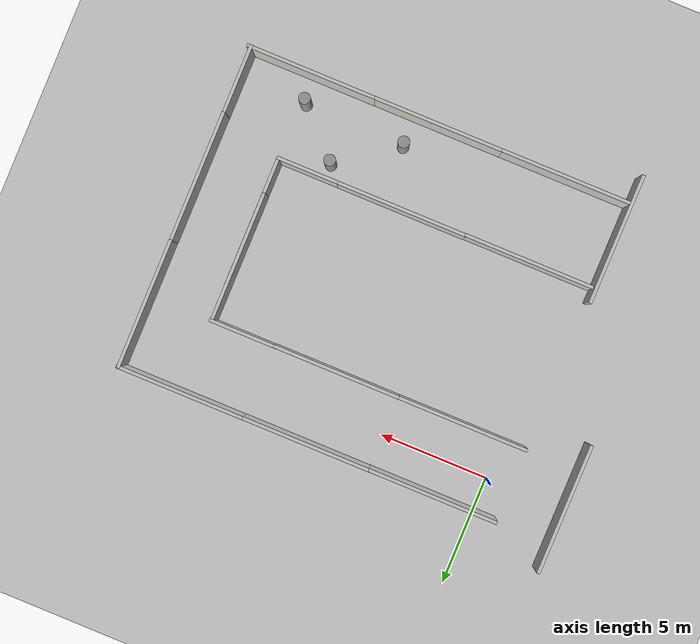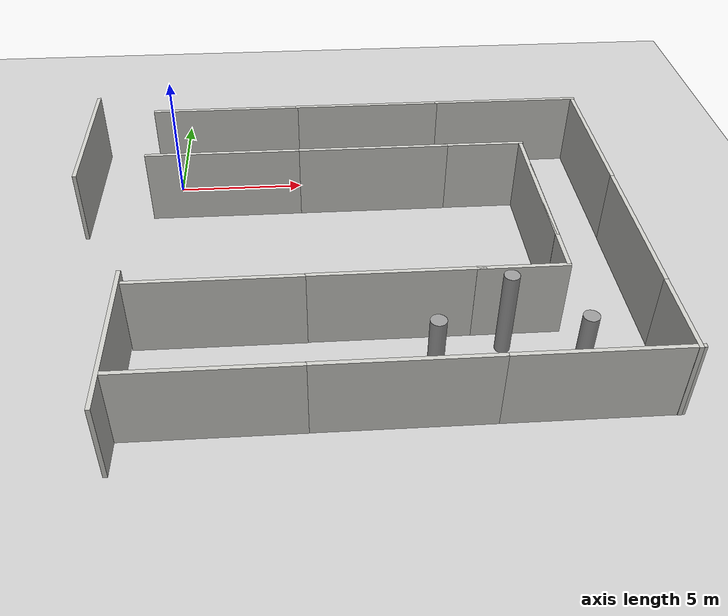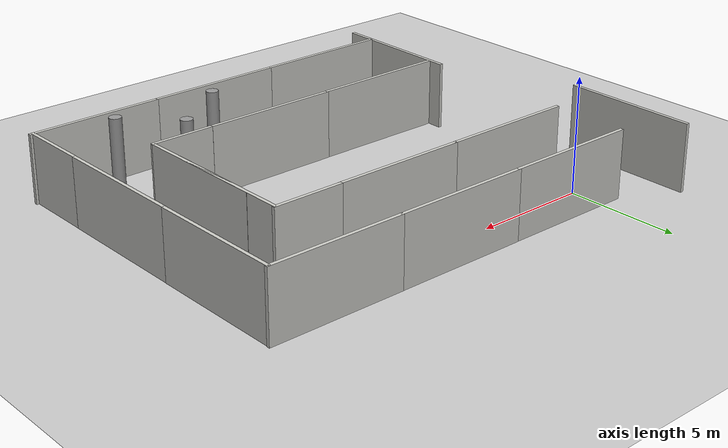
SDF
<sdf version="1.7">
 <world name="default">
  <light name="sun" type="directional">
   <pose>0 0 10 0 -0 0</pose>
   <diffuse>0.8 0.8 0.8 1</diffuse>
   <specular>0.2 0.2 0.2 1</specular>
   <attenuation>
    <range>1000</range>
    <constant>0.9</constant>
    <linear>0.01</linear>
    <quadratic>0.001</quadratic>
   </attenuation>
   <direction>-0.5 0.1 -0.9</direction>
   <spot><inner_angle>0</inner_angle><outer_angle>0</outer_angle><falloff>0</falloff></spot>
  </light>
  <model name="ground_plane">
   <static>1</static>
   <link name="link">
    <collision name="collision">
     <geometry><plane><normal>0 0 1</normal><size>100 100</size></plane></geometry>
     <surface>
      <contact><collide_bitmask>65535</collide_bitmask></contact>
      <friction><ode><mu>100</mu><mu2>50</mu2></ode></friction>
     </surface>
    </collision>
    <visual name="visual">
     <cast_shadows>0</cast_shadows>
     <geometry><plane><normal>0 0 1</normal><size>100 100</size></plane></geometry>
     <material>
      <script><uri>file://media/materials/scripts/gazebo.material</uri><name>Gazebo/Grey</name></script>
     </material>
    </visual>
   </link>
  </model>
  <gravity>0 0 -9.8</gravity>
  <magnetic_field>6e-06 2.3e-05 -4.2e-05</magnetic_field>
  <atmosphere type="adiabatic"/>
  <physics name="default_physics" default="0" type="ode">
   <max_step_size>0.001</max_step_size>
   <real_time_factor>1</real_time_factor>
   <real_time_update_rate>1000</real_time_update_rate>
  </physics>
  <scene><ambient>0.4 0.4 0.4 1</ambient><background>0.7 0.7 0.7 1</background><shadows>1</shadows></scene>
  <spherical_coordinates>
   <surface_model>EARTH_WGS84</surface_model>
   <latitude_deg>0</latitude_deg>
   <longitude_deg>0</longitude_deg>
   <elevation>0</elevation>
   <heading_deg>0</heading_deg>
  </spherical_coordinates>
  <model name="6m_wall_new">
   <link name="Wall_0">
    <collision name="6m_wall_newc">
     <geometry><box><size>6 0.15 3</size></box></geometry>
     <pose>0 0 1.5 0 -0 0</pose>
    </collision>
    <visual name="6m_wall_newv">
     <pose>0 0 1.5 0 -0 0</pose>
     <geometry><box><size>6 0.15 3</size></box></geometry>
     <material>
      <script><uri>file://media/materials/scripts/gazebo.material</uri><name>Gazebo/CeilingTiled</name></script>
      <ambient>1 1 1 1</ambient>
     </material>
     <meta><layer>0</layer></meta>
    </visual>
   </link>
   <static>1</static>
   <pose>1.99756 1.47249 0 0 -0 0</pose>
  </model>
  <model name="6m_wall_new_0">
   <link name="Wall_0">
    <collision name="6m_wall_newc">
     <geometry><box><size>6 0.15 3</size></box></geometry>
     <pose>0 0 1.5 0 -0 0</pose>
    </collision>
    <visual name="6m_wall_newv">
     <pose>0 0 1.5 0 -0 0</pose>
     <geometry><box><size>6 0.15 3</size></box></geometry>
     <material>
      <script><uri>file://media/materials/scripts/gazebo.material</uri><name>Gazebo/CeilingTiled</name></script>
      <ambient>1 1 1 1</ambient>
     </material>
     <meta><layer>0</layer></meta>
    </visual>
   </link>
   <static>1</static>
   <pose>16.7013 -1.45987 0 0 0 -1.5708</pose>
  </model>
  <model name="6m_wall_new_0_clone">
   <link name="Wall_0">
    <collision name="6m_wall_newc">
     <geometry><box><size>6 0.15 3</size></box></geometry>
     <pose>0 0 1.5 0 -0 0</pose>
    </collision>
    <visual name="6m_wall_newv">
     <pose>0 0 1.5 0 -0 0</pose>
     <geometry><box><size>6 0.15 3</size></box></geometry>
     <material>
      <script><uri>file://media/materials/scripts/gazebo.material</uri><name>Gazebo/CeilingTiled</name></script>
      <ambient>1 1 1 1</ambient>
     </material>
     <meta><layer>0</layer></meta>
    </visual>
   </link>
   <static>1</static>
   <pose>16.6905 -7.4318 0 0 0 -1.5708</pose>
  </model>
  <model name="3m_wall_new">
   <pose>16.6828 -12 0 0 0 -1.5708</pose>
   <link name="Wall_45">
    <collision name="3m_wall_newc">
     <geometry><box><size>3.15 0.15 3</size></box></geometry>
     <pose>0 0 1.5 0 -0 0</pose>
    </collision>
    <visual name="3m_wall_newv">
     <pose>0 0 1.5 0 -0 0</pose>
     <geometry><box><size>3.15 0.15 3</size></box></geometry>
     <material>
      <script><uri>file://media/materials/scripts/gazebo.material</uri><name>Gazebo/CeilingTiled</name></script>
      <ambient>1 1 1 1</ambient>
     </material>
     <meta><layer>0</layer></meta>
    </visual>
   </link>
   <static>1</static>
  </model>
  <model name="6m_wall_new_2">
   <link name="Wall_0">
    <collision name="6m_wall_newc">
     <geometry><box><size>6 0.15 3</size></box></geometry>
     <pose>0 0 1.5 0 -0 0</pose>
    </collision>
    <visual name="6m_wall_newv">
     <pose>0 0 1.5 0 -0 0</pose>
     <geometry><box><size>6 0.15 3</size></box></geometry>
     <material>
      <script><uri>file://media/materials/scripts/gazebo.material</uri><name>Gazebo/CeilingTiled</name></script>
      <ambient>1 1 1 1</ambient>
     </material>
     <meta><layer>0</layer></meta>
    </visual>
   </link>
   <static>1</static>
   <pose>1.97517 -1.91466 0 0 -0 0</pose>
  </model>
  <model name="6m_wall_new_2_clone">
   <link name="Wall_0">
    <collision name="6m_wall_newc">
     <geometry><box><size>6 0.15 3</size></box></geometry>
     <pose>0 0 1.5 0 -0 0</pose>
    </collision>
    <visual name="6m_wall_newv">
     <pose>0 0 1.5 0 -0 0</pose>
     <geometry><box><size>6 0.15 3</size></box></geometry>
     <material>
      <script><uri>file://media/materials/scripts/gazebo.material</uri><name>Gazebo/CeilingTiled</name></script>
      <ambient>1 1 1 1</ambient>
     </material>
     <meta><layer>0</layer></meta>
    </visual>
   </link>
   <static>1</static>
   <pose>2.02836 -9.50475 0 0 -0 0</pose>
  </model>
  <model name="6m_wall_new_clone">
   <link name="Wall_0">
    <collision name="6m_wall_newc">
     <geometry><box><size>6 0.15 3</size></box></geometry>
     <pose>0 0 1.5 0 -0 0</pose>
    </collision>
    <visual name="6m_wall_newv">
     <pose>0 0 1.5 0 -0 0</pose>
     <geometry><box><size>6 0.15 3</size></box></geometry>
     <material>
      <script><uri>file://media/materials/scripts/gazebo.material</uri><name>Gazebo/CeilingTiled</name></script>
      <ambient>1 1 1 1</ambient>
     </material>
     <meta><layer>0</layer></meta>
    </visual>
   </link>
   <static>1</static>
   <pose>7.89718 1.48051 0 0 -0 0</pose>
  </model>
  <model name="6m_wall_new_clone_0">
   <link name="Wall_0">
    <collision name="6m_wall_newc">
     <geometry><box><size>6 0.15 3</size></box></geometry>
     <pose>0 0 1.5 0 -0 0</pose>
    </collision>
    <visual name="6m_wall_newv">
     <pose>0 0 1.5 0 -0 0</pose>
     <geometry><box><size>6 0.15 3</size></box></geometry>
     <material>
      <script><uri>file://media/materials/scripts/gazebo.material</uri><name>Gazebo/CeilingTiled</name></script>
      <ambient>1 1 1 1</ambient>
     </material>
     <meta><layer>0</layer></meta>
    </visual>
   </link>
   <static>1</static>
   <pose>13.8028 1.48789 0 0 -0 0</pose>
  </model>
  <model name="6m_wall_new_1">
   <link name="Wall_0">
    <collision name="6m_wall_newc">
     <geometry><box><size>6 0.15 3</size></box></geometry>
     <pose>0 0 1.5 0 -0 0</pose>
    </collision>
    <visual name="6m_wall_newv">
     <pose>0 0 1.5 0 -0 0</pose>
     <geometry><box><size>6 0.15 3</size></box></geometry>
     <material>
      <script><uri>file://media/materials/scripts/gazebo.material</uri><name>Gazebo/CeilingTiled</name></script>
      <ambient>1 1 1 1</ambient>
     </material>
     <meta><layer>0</layer></meta>
    </visual>
   </link>
   <static>1</static>
   <pose>1.94933 -13.4886 0 0 -0 0</pose>
  </model>
  <model name="6m_wall_new_4">
   <link name="Wall_0">
    <collision name="6m_wall_newc">
     <geometry><box><size>6 0.15 3</size></box></geometry>
     <pose>0 0 1.5 0 -0 0</pose>
    </collision>
    <visual name="6m_wall_newv">
     <pose>0 0 1.5 0 -0 0</pose>
     <geometry><box><size>6 0.15 3</size></box></geometry>
     <material>
      <script><uri>file://media/materials/scripts/gazebo.material</uri><name>Gazebo/CeilingTiled</name></script>
      <ambient>1 1 1 1</ambient>
     </material>
     <meta><layer>0</layer></meta>
    </visual>
   </link>
   <static>1</static>
   <pose>7.9112 -13.4817 0 0 -0 0</pose>
  </model>
  <model name="6m_wall_new_5">
   <link name="Wall_0">
    <collision name="6m_wall_newc">
     <geometry><box><size>6 0.15 3</size></box></geometry>
     <pose>0 0 1.5 0 -0 0</pose>
    </collision>
    <visual name="6m_wall_newv">
     <pose>0 0 1.5 0 -0 0</pose>
     <geometry><box><size>6 0.15 3</size></box></geometry>
     <material>
      <script><uri>file://media/materials/scripts/gazebo.material</uri><name>Gazebo/CeilingTiled</name></script>
      <ambient>1 1 1 1</ambient>
     </material>
     <meta><layer>0</layer></meta>
    </visual>
   </link>
   <static>1</static>
   <pose>13.8637 -13.4791 0 0 -0 0</pose>
  </model>
  <model name="6m_wall_new_3">
   <link name="Wall_0">
    <collision name="6m_wall_newc">
     <geometry><box><size>6 0.15 3</size></box></geometry>
     <pose>0 0 1.5 0 -0 0</pose>
    </collision>
    <visual name="6m_wall_newv">
     <pose>0 0 1.5 0 -0 0</pose>
     <geometry><box><size>6 0.15 3</size></box></geometry>
     <material>
      <script><uri>file://media/materials/scripts/gazebo.material</uri><name>Gazebo/CeilingTiled</name></script>
      <ambient>1 1 1 1</ambient>
     </material>
     <meta><layer>0</layer></meta>
    </visual>
   </link>
   <static>1</static>
   <pose>7.84 -1.91008 0 0 -0 0</pose>
  </model>
  <model name="3m_wall_new_0">
   <pose>12.2717 -1.89822 0 0 -0 0</pose>
   <link name="Wall_45">
    <collision name="3m_wall_newc">
     <geometry><box><size>3.15 0.15 3</size></box></geometry>
     <pose>0 0 1.5 0 -0 0</pose>
    </collision>
    <visual name="3m_wall_newv">
     <pose>0 0 1.5 0 -0 0</pose>
     <geometry><box><size>3.15 0.15 3</size></box></geometry>
     <material>
      <script><uri>file://media/materials/scripts/gazebo.material</uri><name>Gazebo/CeilingTiled</name></script>
      <ambient>1 1 1 1</ambient>
     </material>
     <meta><layer>0</layer></meta>
    </visual>
   </link>
   <static>1</static>
  </model>
  <model name="6m_wall_new_6">
   <link name="Wall_0">
    <collision name="6m_wall_newc">
     <geometry><box><size>6 0.15 3</size></box></geometry>
     <pose>0 0 1.5 0 -0 0</pose>
    </collision>
    <visual name="6m_wall_newv">
     <pose>0 0 1.5 0 -0 0</pose>
     <geometry><box><size>6 0.15 3</size></box></geometry>
     <material>
      <script><uri>file://media/materials/scripts/gazebo.material</uri><name>Gazebo/CeilingTiled</name></script>
      <ambient>1 1 1 1</ambient>
     </material>
     <meta><layer>0</layer></meta>
    </visual>
   </link>
   <static>1</static>
   <pose>7.98325 -9.48702 0 0 -0 0</pose>
  </model>
  <model name="3m_wall_new_1">
   <pose>12.2422 -9.4891 0 0 -0 0</pose>
   <link name="Wall_45">
    <collision name="3m_wall_newc">
     <geometry><box><size>3.15 0.15 3</size></box></geometry>
     <pose>0 0 1.5 0 -0 0</pose>
    </collision>
    <visual name="3m_wall_newv">
     <pose>0 0 1.5 0 -0 0</pose>
     <geometry><box><size>3.15 0.15 3</size></box></geometry>
     <material>
      <script><uri>file://media/materials/scripts/gazebo.material</uri><name>Gazebo/CeilingTiled</name></script>
      <ambient>1 1 1 1</ambient>
     </material>
     <meta><layer>0</layer></meta>
    </visual>
   </link>
   <static>1</static>
  </model>
  <model name="6m_wall_new_0_clone_clone">
   <link name="Wall_0">
    <collision name="6m_wall_newc">
     <geometry><box><size>6 0.15 3</size></box></geometry>
     <pose>0 0 1.5 0 -0 0</pose>
    </collision>
    <visual name="6m_wall_newv">
     <pose>0 0 1.5 0 -0 0</pose>
     <geometry><box><size>6 0.15 3</size></box></geometry>
     <material>
      <script><uri>file://media/materials/scripts/gazebo.material</uri><name>Gazebo/CeilingTiled</name></script>
      <ambient>1 1 1 1</ambient>
     </material>
     <meta><layer>0</layer></meta>
    </visual>
   </link>
   <static>1</static>
   <pose>13.7421 -4.8635 0 0 0 -1.5708</pose>
  </model>
  <model name="6m_wall_new_0_clone_clone_0">
   <link name="Wall_0">
    <collision name="6m_wall_newc">
     <geometry><box><size>6 0.15 3</size></box></geometry>
     <pose>0 0 1.5 0 -0 0</pose>
    </collision>
    <visual name="6m_wall_newv">
     <pose>0 0 1.5 0 -0 0</pose>
     <geometry><box><size>6 0.15 3</size></box></geometry>
     <material>
      <script><uri>file://media/materials/scripts/gazebo.material</uri><name>Gazebo/CeilingTiled</name></script>
      <ambient>1 1 1 1</ambient>
     </material>
     <meta><layer>0</layer></meta>
    </visual>
   </link>
   <static>1</static>
   <pose>13.7488 -6.46651 0 0 0 -1.5708</pose>
  </model>
  <model name="unit_cylinder_clone">
   <pose>13.6733 -12.2778 1.63115 0 -0 0.002359</pose>
   <link name="link">
    <inertial>
     <mass>1</mass>
     <inertia><ixx>0.145833</ixx><ixy>0</ixy><ixz>0</ixz><iyy>0.145833</iyy><iyz>0</iyz><izz>0.125</izz></inertia>
    </inertial>
    <collision name="collision">
     <geometry><cylinder><radius>0.267355</radius><length>3.26231</length></cylinder></geometry>
    </collision>
    <visual name="visual">
     <geometry><cylinder><radius>0.267355</radius><length>3.26231</length></cylinder></geometry>
     <material>
      <script><name>Gazebo/Grey</name><uri>file://media/materials/scripts/gazebo.material</uri></script>
     </material>
    </visual>
   </link>
  </model>
  <model name="unit_cylinder_clone_0">
   <pose>11.6525 -10.2326 1.63115 0 -0 0.0023</pose>
   <link name="link">
    <inertial>
     <mass>1</mass>
     <inertia><ixx>0.145833</ixx><ixy>0</ixy><ixz>0</ixz><iyy>0.145833</iyy><iyz>0</iyz><izz>0.125</izz></inertia>
    </inertial>
    <collision name="collision">
     <geometry><cylinder><radius>0.267355</radius><length>3.26231</length></cylinder></geometry>
    </collision>
    <visual name="visual">
     <geometry><cylinder><radius>0.267355</radius><length>3.26231</length></cylinder></geometry>
     <material>
      <script><name>Gazebo/Grey</name><uri>file://media/materials/scripts/gazebo.material</uri></script>
     </material>
    </visual>
   </link>
  </model>
  <model name="unit_cylinder_clone_1">
   <pose>8.99547 -12.1773 1.63115 0 -0 0.002242</pose>
   <link name="link">
    <inertial>
     <mass>1</mass>
     <inertia><ixx>0.145833</ixx><ixy>0</ixy><ixz>0</ixz><iyy>0.145833</iyy><iyz>0</iyz><izz>0.125</izz></inertia>
    </inertial>
    <collision name="collision">
     <geometry><cylinder><radius>0.267355</radius><length>3.26231</length></cylinder></geometry>
    </collision>
    <visual name="visual">
     <geometry><cylinder><radius>0.267355</radius><length>3.26231</length></cylinder></geometry>
     <material>
      <script><name>Gazebo/Grey</name><uri>file://media/materials/scripts/gazebo.material</uri></script>
     </material>
    </visual>
   </link>
  </model>
  <model name="6m_wall_new_2_clone_clone">
   <link name="Wall_0">
    <collision name="6m_wall_newc">
     <geometry><box><size>6 0.15 3</size></box></geometry>
     <pose>0 0 1.5 0 -0 0</pose>
    </collision>
    <visual name="6m_wall_newv">
     <pose>0 0 1.5 0 -0 0</pose>
     <geometry><box><size>6 0.15 3</size></box></geometry>
     <material>
      <script><uri>file://media/materials/scripts/gazebo.material</uri><name>Gazebo/CeilingTiled</name></script>
      <ambient>1 1 1 1</ambient>
     </material>
     <meta><layer>0</layer></meta>
    </visual>
   </link>
   <static>1</static>
   <pose>-1.12034 -11.8367 -0.031817 0 0 -1.5779</pose>
  </model>
  <model name="6m_wall_new_2_clone_clone_clone">
   <link name="Wall_0">
    <collision name="6m_wall_newc">
     <geometry><box><size>6 0.15 3</size></box></geometry>
     <pose>0 0 1.5 0 -0 0</pose>
    </collision>
    <visual name="6m_wall_newv">
     <pose>0 0 1.5 0 -0 0</pose>
     <geometry><box><size>6 0.15 3</size></box></geometry>
     <material>
      <script><uri>file://media/materials/scripts/gazebo.material</uri><name>Gazebo/CeilingTiled</name></script>
      <ambient>1 1 1 1</ambient>
     </material>
     <meta><layer>0</layer></meta>
    </visual>
   </link>
   <static>1</static>
   <pose>-3.50217 -0.184257 -0.031817 0 0 -1.5779</pose>
  </model>
 </world>
</sdf>
